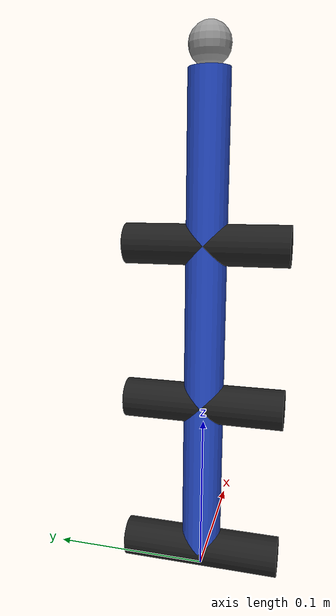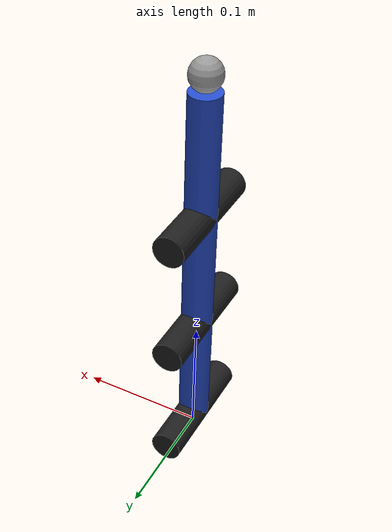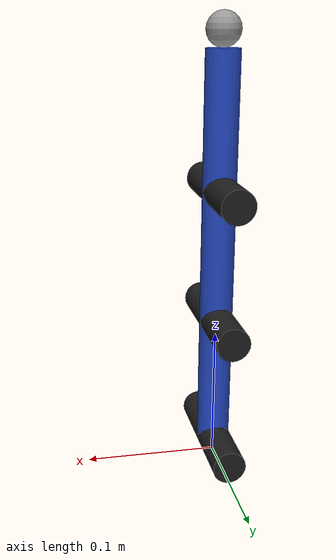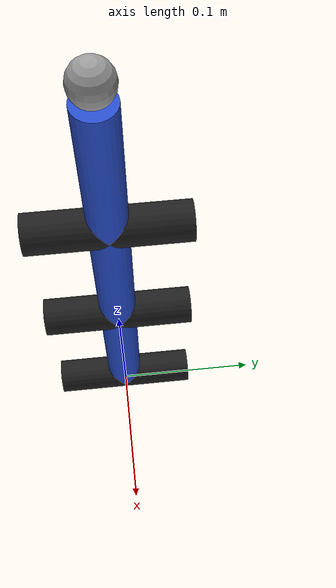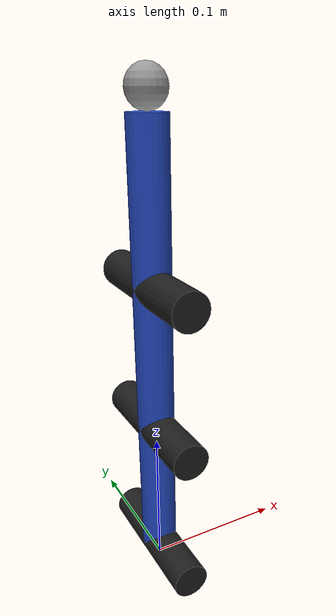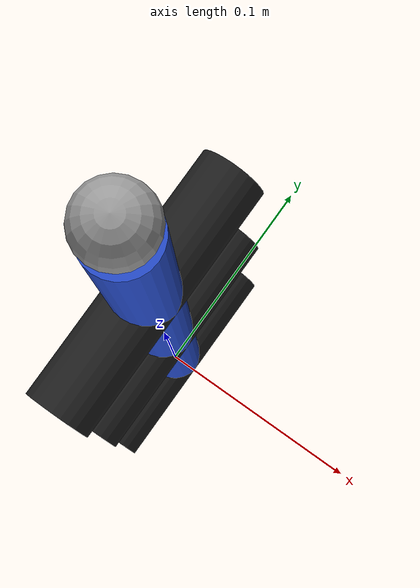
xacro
<?xml version="1.0"?>
<robot name="3R_manipulator" xmlns:xacro="http://www.ros.org/wiki/xacro">

    <xacro:include filename="common_properties.xacro" />

    <!-- Properties -->
    <xacro:property name="link_radius" value="0.0125" />
    <xacro:property name="link_length" value="0.1" />
    <xacro:property name="payload_radius" value="0.0125" />

    <!-- Base footprint and link -->
    <link name="base_footprint"/>

    <joint name="base_joint" type="revolute">
        <parent link="base_footprint"/>
        <child link="base_link"/>
        <origin xyz="0 0 ${link_radius}" rpy="${pi/2} 0 0"/>
        <limit effort="100.0" velocity="10.0" lower="${-pi/2}" upper="${pi/2}" />
        <axis xyz="0 0 1"/>
    </joint>

    <link name="base_link">
            <visual>
                <geometry>
                    <cylinder radius="${link_radius}" length="${link_length}"/>
                </geometry>
                <material name="black"/>
            </visual>
            <collision>
                <geometry>
                    <cylinder radius="${link_radius}" length="${link_length}"/>
                </geometry>
            </collision>
            <xacro:cylinder_inertia m="0.1" r="${link_radius}" h="${link_length}"
                                    xyz="0 0 0" rpy="0 0 0" />
        </link>

    <joint name="base_link2_joint" type="fixed">
        <parent link="base_link"/>
        <child link="link2"/>
        <origin xyz="0 0 0" rpy="${-pi/2} 0 0 "/>
        <axis xyz="0 1 0"/>
    </joint>

    <link name="link2">
            <visual>
                <geometry>
                    <cylinder radius="${link_radius}" length="${link_length}"/>
                </geometry>
                <material name="blue"/>
                <origin xyz="0 0 ${link_length/2}" rpy="0 0 0 "/>
            </visual>
            <collision>
                <geometry>
                    <cylinder radius="${link_radius}" length="${link_length}"/>
                </geometry>
            </collision>
            <xacro:cylinder_inertia m="0.1" r="${link_radius}" h="${link_length}"
                                    xyz="0 0 0" rpy="0 0 0" />
    </link>

    <joint name="link2_joint2" type="revolute">
        <parent link="link2"/>
        <child link="joint2_link"/>
        <origin xyz="0 0 ${link_length}" rpy="${pi/2} 0 0"/>
        <limit effort="100.0" velocity="10.0" lower="${-pi/2}" upper="${pi/2}" />
        <axis xyz="0 0 1"/>
    </joint>

    <link name="joint2_link">
            <visual>
                <geometry>
                    <cylinder radius="${link_radius}" length="${link_length}"/>
                </geometry>
                <material name="black"/>
                <origin xyz="0 0 0" rpy="0 0 0"/>
            </visual>
            <collision>
                <geometry>
                    <cylinder radius="${link_radius}" length="${link_length}"/>
                </geometry>
            </collision>
            <xacro:cylinder_inertia m="0.1" r="${link_radius}" h="${link_length}"
                                    xyz="0 0 0" rpy="0 0 0" />
    </link>

    <joint name="joint2_link3_joint" type="fixed">
        <parent link="joint2_link"/>
        <child link="link3"/>
        <origin xyz="0 0 0" rpy="${-pi/2} 0 0 "/>
        <axis xyz="0 1 0"/>
    </joint>

    <link name="link3">
            <visual>
                <geometry>
                    <cylinder radius="${link_radius}" length="${link_length}"/>
                </geometry>
                <material name="blue"/>
                <origin xyz="0 0 ${link_length/2}" rpy="0 0 0 "/>
            </visual>
            <collision>
                <geometry>
                    <cylinder radius="${link_radius}" length="${link_length}"/>
                </geometry>
            </collision>
            <xacro:cylinder_inertia m="0.1" r="${link_radius}" h="${link_length}"
                                    xyz="0 0 0" rpy="0 0 0" />
    </link>

    <joint name="link3_joint3" type="revolute">
        <parent link="link3"/>
        <child link="joint3_link"/>
        <origin xyz="0 0 ${link_length}" rpy="${pi/2} 0 0"/>
        <limit effort="100.0" velocity="10.0" lower="${-pi/2}" upper="${pi/2}" />
        <axis xyz="0 0 1"/>
    </joint>

    <link name="joint3_link">
            <visual>
                <geometry>
                    <cylinder radius="${link_radius}" length="${link_length}"/>
                </geometry>
                <material name="black"/>
            </visual>
            <collision>
                <geometry>
                    <cylinder radius="${link_radius}" length="${link_length}"/>
                </geometry>
            </collision>
            <xacro:cylinder_inertia m="0.1" r="${link_radius}" h="${link_length}"
                                    xyz="0 0 0" rpy="0 0 0" />
    </link>

    <joint name="joint3_link4_joint" type="fixed">
        <parent link="joint3_link"/>
        <child link="link4"/>
        <origin xyz="0 0 0" rpy="${-pi/2} 0 0 "/>
        <axis xyz="0 1 0"/>
    </joint>

    <link name="link4">
            <visual>
                <geometry>
                    <cylinder radius="${link_radius}" length="${link_length}"/>
                </geometry>
                <material name="blue"/>
                <origin xyz="0 0 ${link_length/2}" rpy="0 0 0 "/>
            </visual>
            <collision>
                <geometry>
                    <cylinder radius="${link_radius}" length="${link_length}"/>
                </geometry>
            </collision>
            <xacro:cylinder_inertia m="0.1" r="${link_radius}" h="${link_length}"
                                    xyz="0 0 0" rpy="0 0 0" />
    </link>

    <joint name="link4_payload" type="fixed">
        <parent link="link4"/>
        <child link="payload"/>
        <origin xyz="0 0 ${link_length + payload_radius}" rpy="0 0 0"/>
        <axis xyz="0 0 1"/>
    </joint>

     <link name="payload">
        <visual>
            <geometry>
                <sphere radius="${payload_radius}"/>
            </geometry>
            <material name="grey"/>
            <origin xyz="0 0 0" rpy="0 0 0 "/>
        </visual>
        <collision>
            <geometry>
                <sphere radius="${payload_radius}"/>
            </geometry>
        </collision>
        <xacro:sphere_inertia m="0.5" r="${payload_radius}"
                                    xyz="0 0 0" rpy="0 0 0" />
    </link>

</robot>

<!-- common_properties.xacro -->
<robot xmlns:xacro="http://www.ros.org/wiki/xacro">

    <gazebo reference="base_link">
        <material>Gazebo/Black</material>
    </gazebo>

    <gazebo reference="link1">
        <material>Gazebo/Blue</material>
    </gazebo>

    <gazebo reference="joint2_link">
        <material>Gazebo/Black</material>
    </gazebo>

    <gazebo reference="link2">
        <material>Gazebo/Blue</material>
    </gazebo>

    <gazebo reference="joint3_link">
        <material>Gazebo/Black</material>
    </gazebo>

    <gazebo reference="link3">
        <material>Gazebo/Blue</material>
    </gazebo>

    <gazebo reference="payload">
        <material>Gazebo/Grey</material>
    </gazebo>

    <xacro:macro name="box_inertia" params="m l w h xyz rpy">
        <inertial>
            <origin xyz="${xyz}" rpy="${rpy}" />
            <mass value="${m}" />
            <inertia ixx="${(m/12) * (h*h + l*l)}" ixy="0" ixz="0"
                     iyy="${(m/12) * (w*w + l*l)}" iyz="0"
                     izz="${(m/12) * (w*w + h*h)}" />
        </inertial>
    </xacro:macro>

    <xacro:macro name="cylinder_inertia" params="m r h xyz rpy">
        <inertial>
            <origin xyz="${xyz}" rpy="${rpy}" />
            <mass value="${m}" />
            <inertia ixx="${(m/12) * (3*r*r + h*h)}" ixy="0" ixz="0"
                     iyy="${(m/12) * (3*r*r + h*h)}" iyz="0"
                     izz="${(m/2) * (r*r)}" />
        </inertial>
    </xacro:macro>

    <xacro:macro name="sphere_inertia" params="m r xyz rpy">
        <inertial>
            <origin xyz="${xyz}" rpy="${rpy}" />
            <mass value="${m}" />
            <inertia ixx="${(2/5) * m * r * r}" ixy="0" ixz="0"
                     iyy="${(2/5) * m * r * r}" iyz="0"
                     izz="${(2/5) * m * r * r}" />
        </inertial>
    </xacro:macro>

</robot>
